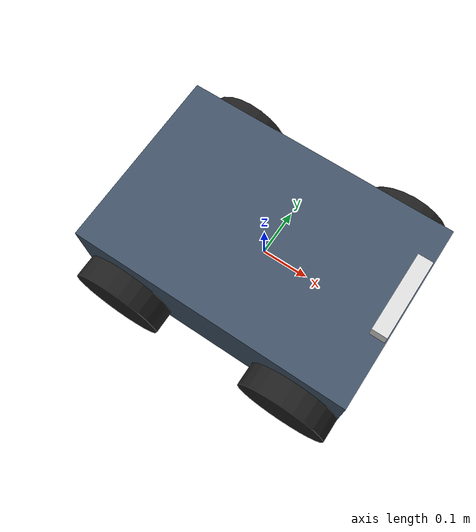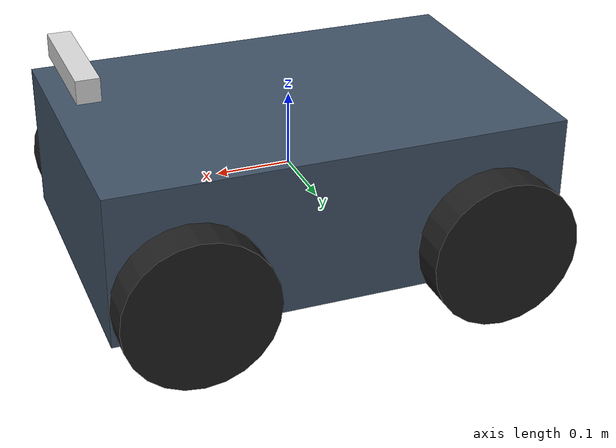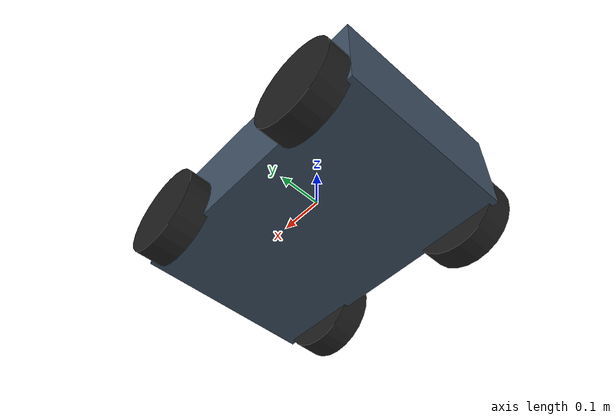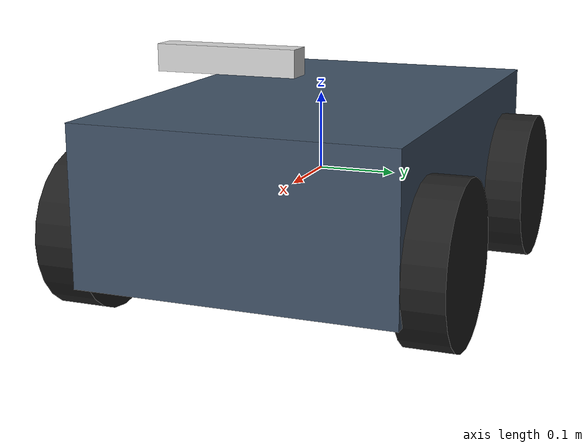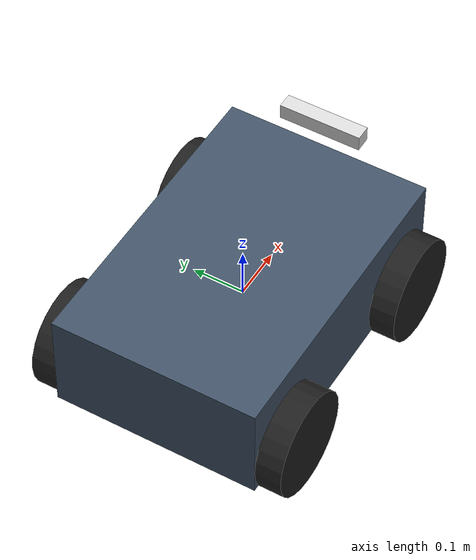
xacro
<?xml version="1.0"?>
<robot name="drishti" xmlns:xacro="http://www.ros.org/wiki/xacro">

  <!-- ==================================================== dimensions ==== -->
  <xacro:property name="base_length" value="0.600"/>
  <xacro:property name="base_width"  value="0.400"/>
  <xacro:property name="base_height" value="0.200"/>
  <xacro:property name="base_mass"   value="20.0"/>

  <xacro:property name="wheel_radius"     value="0.100"/>
  <xacro:property name="wheel_width"      value="0.060"/>
  <xacro:property name="wheel_mass"       value="1.500"/>
  <xacro:property name="wheel_separation" value="0.440"/>
  <xacro:property name="wheel_base"       value="0.400"/>
  <!-- Drop the axle below the body so the hull sits ~0.10 m off the ground. -->
  <xacro:property name="wheel_z"          value="-0.050"/>

  <xacro:property name="camera_x"        value="0.280"/>
  <xacro:property name="camera_z"        value="0.180"/>
  <xacro:property name="stereo_baseline" value="0.120"/>

  <xacro:property name="imu_z" value="0.050"/>

  <xacro:property name="PI"      value="3.14159265359"/>
  <xacro:property name="HALF_PI" value="1.57079632679"/>

  <!-- ========================================================= macros ==== -->
  <xacro:macro name="box_inertia" params="m x y z">
    <inertial>
      <mass value="${m}"/>
      <origin xyz="0 0 0" rpy="0 0 0"/>
      <inertia
        ixx="${m * (y*y + z*z) / 12.0}" ixy="0.0" ixz="0.0"
        iyy="${m * (x*x + z*z) / 12.0}" iyz="0.0"
        izz="${m * (x*x + y*y) / 12.0}"/>
    </inertial>
  </xacro:macro>

  <!-- Cylinder lying along its own Y axis, as the wheels are mounted. -->
  <xacro:macro name="wheel_inertia" params="m r w">
    <inertial>
      <mass value="${m}"/>
      <origin xyz="0 0 0" rpy="0 0 0"/>
      <inertia
        ixx="${m * (3.0*r*r + w*w) / 12.0}" ixy="0.0" ixz="0.0"
        iyy="${m * r * r / 2.0}"            iyz="0.0"
        izz="${m * (3.0*r*r + w*w) / 12.0}"/>
    </inertial>
  </xacro:macro>

  <xacro:macro name="wheel" params="name x y">
    <link name="${name}_link">
      <visual>
        <origin xyz="0 0 0" rpy="${HALF_PI} 0 0"/>
        <geometry><cylinder radius="${wheel_radius}" length="${wheel_width}"/></geometry>
        <material name="wheel_black"><color rgba="0.12 0.12 0.12 1.0"/></material>
      </visual>
      <collision>
        <origin xyz="0 0 0" rpy="${HALF_PI} 0 0"/>
        <geometry><cylinder radius="${wheel_radius}" length="${wheel_width}"/></geometry>
      </collision>
      <xacro:wheel_inertia m="${wheel_mass}" r="${wheel_radius}" w="${wheel_width}"/>
    </link>

    <joint name="${name}_joint" type="continuous">
      <parent link="base_link"/>
      <child  link="${name}_link"/>
      <origin xyz="${x} ${y} ${wheel_z}" rpy="0 0 0"/>
      <axis xyz="0 1 0"/>
    </joint>

    <gazebo reference="${name}_link">
      <mu1>1.0</mu1>
      <mu2>1.0</mu2>
      <kp>1000000.0</kp>
      <kd>10.0</kd>
    </gazebo>
  </xacro:macro>

  <!-- =========================================================== body ==== -->
  <link name="base_link">
    <visual>
      <origin xyz="0 0 0" rpy="0 0 0"/>
      <geometry><box size="${base_length} ${base_width} ${base_height}"/></geometry>
      <material name="hull"><color rgba="0.25 0.32 0.40 1.0"/></material>
    </visual>
    <collision>
      <origin xyz="0 0 0" rpy="0 0 0"/>
      <geometry><box size="${base_length} ${base_width} ${base_height}"/></geometry>
    </collision>
    <xacro:box_inertia m="${base_mass}" x="${base_length}" y="${base_width}" z="${base_height}"/>
  </link>

  <xacro:wheel name="wheel_left_front"  x="${ wheel_base/2}" y="${ wheel_separation/2}"/>
  <xacro:wheel name="wheel_left_rear"   x="${-wheel_base/2}" y="${ wheel_separation/2}"/>
  <xacro:wheel name="wheel_right_front" x="${ wheel_base/2}" y="${-wheel_separation/2}"/>
  <xacro:wheel name="wheel_right_rear"  x="${-wheel_base/2}" y="${-wheel_separation/2}"/>

  <!-- ========================================================= sensors ==== -->
  <!-- Mounting frame: ROS body convention, x forward, y left, z up. -->
  <link name="camera_link">
    <visual>
      <origin xyz="0 0 0" rpy="0 0 0"/>
      <geometry><box size="0.03 ${stereo_baseline + 0.04} 0.03"/></geometry>
      <material name="sensor_grey"><color rgba="0.85 0.85 0.85 1.0"/></material>
    </visual>
    <xacro:box_inertia m="0.2" x="0.03" y="${stereo_baseline + 0.04}" z="0.03"/>
  </link>

  <joint name="camera_joint" type="fixed">
    <parent link="base_link"/>
    <child  link="camera_link"/>
    <origin xyz="${camera_x} 0 ${camera_z}" rpy="0 0 0"/>
  </joint>

  <link name="camera_left_optical"/>
  <joint name="camera_left_optical_joint" type="fixed">
    <parent link="camera_link"/>
    <child  link="camera_left_optical"/>
    <origin xyz="0 ${ stereo_baseline/2} 0" rpy="${-HALF_PI} 0 ${-HALF_PI}"/>
  </joint>

  <link name="camera_right_optical"/>
  <joint name="camera_right_optical_joint" type="fixed">
    <parent link="camera_link"/>
    <child  link="camera_right_optical"/>
    <origin xyz="0 ${-stereo_baseline/2} 0" rpy="${-HALF_PI} 0 ${-HALF_PI}"/>
  </joint>

  <link name="imu_link">
    <xacro:box_inertia m="0.05" x="0.02" y="0.02" z="0.01"/>
  </link>
  <joint name="imu_joint" type="fixed">
    <parent link="base_link"/>
    <child  link="imu_link"/>
    <origin xyz="0 0 ${imu_z}" rpy="0 0 0"/>
  </joint>

  <!-- ================================================ gazebo sensors ==== -->
  <gazebo reference="camera_link">
    <sensor name="camera_left" type="camera">
      <pose relative_to="camera_left_optical">0 0 0 0 0 0</pose>
      <topic>camera/left</topic>
      <gz_frame_id>camera_left_optical</gz_frame_id>
      <update_rate>30</update_rate>
      <always_on>1</always_on>
      <camera>
        <horizontal_fov>1.3962634</horizontal_fov>
        <image><width>640</width><height>480</height><format>R8G8B8</format></image>
        <clip><near>0.05</near><far>60.0</far></clip>
        <noise><type>gaussian</type><mean>0.0</mean><stddev>0.005</stddev></noise>
      </camera>
    </sensor>

    <sensor name="camera_right" type="camera">
      <pose relative_to="camera_right_optical">0 0 0 0 0 0</pose>
      <topic>camera/right</topic>
      <gz_frame_id>camera_right_optical</gz_frame_id>
      <update_rate>30</update_rate>
      <always_on>1</always_on>
      <camera>
        <horizontal_fov>1.3962634</horizontal_fov>
        <image><width>640</width><height>480</height><format>R8G8B8</format></image>
        <clip><near>0.05</near><far>60.0</far></clip>
        <noise><type>gaussian</type><mean>0.0</mean><stddev>0.005</stddev></noise>
      </camera>
    </sensor>

    <sensor name="camera_depth" type="depth_camera">
      <pose relative_to="camera_left_optical">0 0 0 0 0 0</pose>
      <topic>camera/depth</topic>
      <gz_frame_id>camera_left_optical</gz_frame_id>
      <update_rate>30</update_rate>
      <always_on>1</always_on>
      <camera>
        <horizontal_fov>1.3962634</horizontal_fov>
        <image><width>640</width><height>480</height><format>R_FLOAT32</format></image>
        <clip><near>0.10</near><far>20.0</far></clip>
      </camera>
    </sensor>
  </gazebo>

  <gazebo reference="imu_link">
    <sensor name="imu" type="imu">
      <topic>imu</topic>
      <gz_frame_id>imu_link</gz_frame_id>
      <update_rate>100</update_rate>
      <always_on>1</always_on>
    </sensor>
  </gazebo>

  <!-- ================================================ gazebo systems ==== -->
  <gazebo>
    <plugin filename="gz-sim-diff-drive-system" name="gz::sim::systems::DiffDrive">
      <left_joint>wheel_left_front_joint</left_joint>
      <left_joint>wheel_left_rear_joint</left_joint>
      <right_joint>wheel_right_front_joint</right_joint>
      <right_joint>wheel_right_rear_joint</right_joint>
      <wheel_separation>${wheel_separation}</wheel_separation>
      <wheel_radius>${wheel_radius}</wheel_radius>
      <max_linear_acceleration>1.5</max_linear_acceleration>
      <topic>cmd_vel</topic>
      <odom_topic>odom</odom_topic>
      <tf_topic>tf</tf_topic>
      <frame_id>odom</frame_id>
      <child_frame_id>base_link</child_frame_id>
      <odom_publish_frequency>50</odom_publish_frequency>
    </plugin>

    <plugin filename="gz-sim-joint-state-publisher-system"
            name="gz::sim::systems::JointStatePublisher">
      <topic>joint_states</topic>
      <joint_name>wheel_left_front_joint</joint_name>
      <joint_name>wheel_left_rear_joint</joint_name>
      <joint_name>wheel_right_front_joint</joint_name>
      <joint_name>wheel_right_rear_joint</joint_name>
    </plugin>

    <plugin filename="gz-sim-odometry-publisher-system"
            name="gz::sim::systems::OdometryPublisher">
      <odom_frame>world</odom_frame>
      <robot_base_frame>base_link</robot_base_frame>
      <odom_topic>ground_truth/pose</odom_topic>
      <odom_publish_frequency>50</odom_publish_frequency>
      <dimensions>3</dimensions>
    </plugin>
  </gazebo>

</robot>
